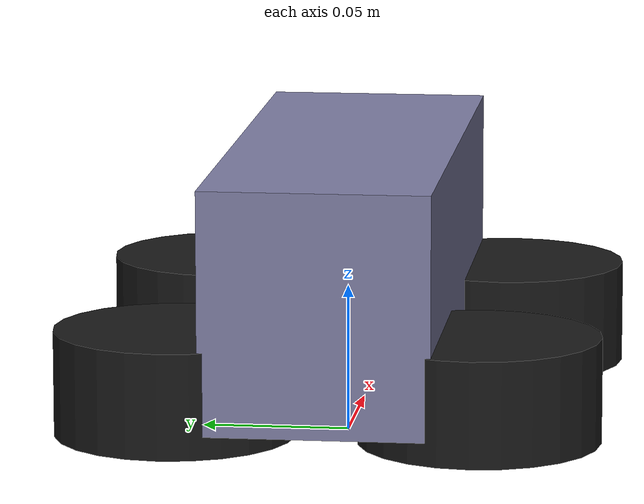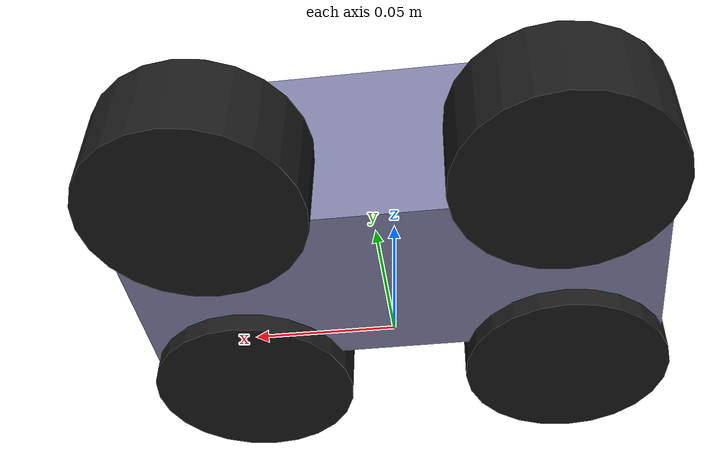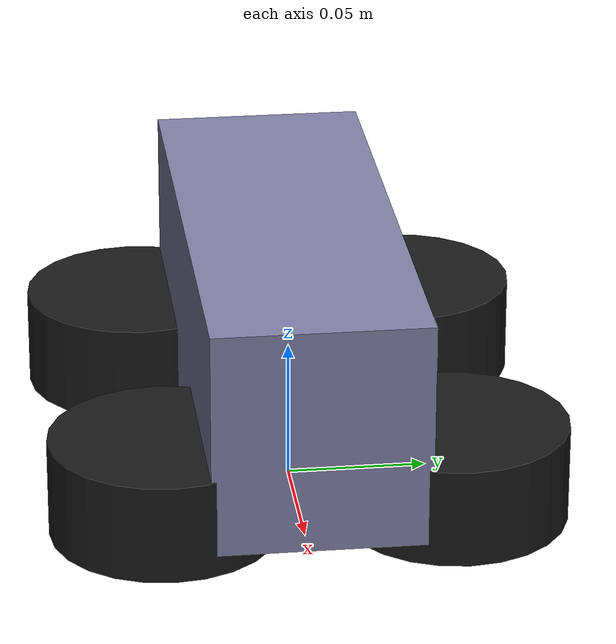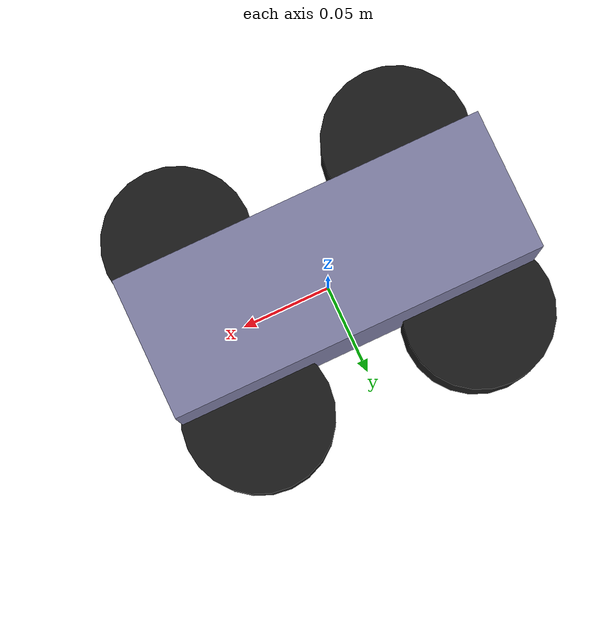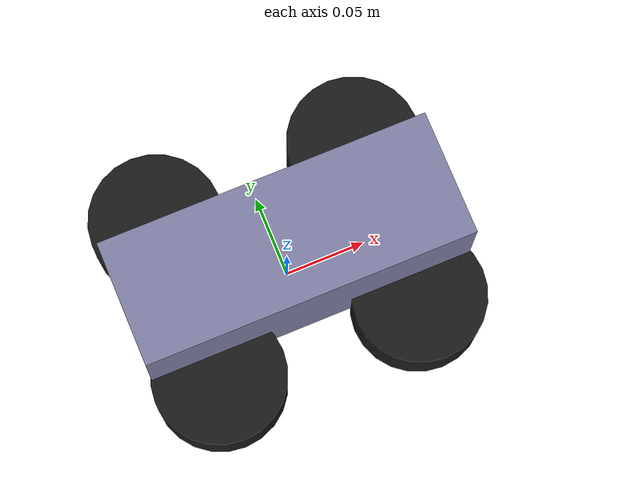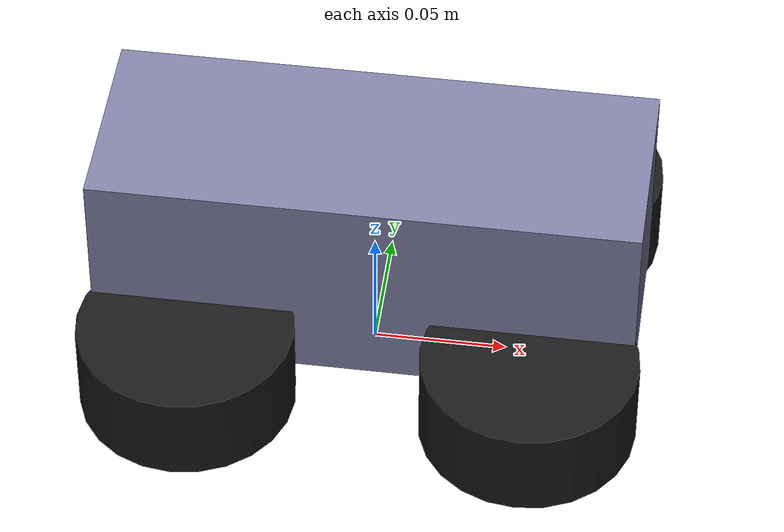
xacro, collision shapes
<?xml version="1.0"?>
<robot name="jsc_mecanum_bot" xmlns:xacro="http://ros.org/wiki/xacro">

  <!--*************** MATERIALES ****************-->
  <material name="darkgrey">
    <color rgba="0.1 0.1 0.1 1.0" />
  </material>
  <material name="grey_blue">
    <color rgba="0.5 0.5 0.65 1.0" />
  </material>
  <material name="blue">
    <color rgba="0.0 0.0 0.8 1.0" />
  </material>
  <material name="black">
    <color rgba="0.0 0.0 0.0 1.0"/>
  </material>

  <!--*************** PROPIEDADES ****************-->
  <xacro:property name="M_PI" value="3.1415926535897931" />
  <xacro:property name="base_size_x" value="0.20" />
  <xacro:property name="base_size_y" value="0.075" />
  <xacro:property name="base_size_z" value="0.08" />
  <xacro:property name="base_mass" value="2.00" />

  <xacro:property name="wheel_radius" value="0.04" />
  <xacro:property name="wheel_width" value="0.035" />
  <xacro:property name="wheel_offset_x" value="0.063"/>
  <xacro:property name="wheel_offset_y" value="0.05"/>
  <xacro:property name="wheel_offset_z" value="0.01"/>
  <xacro:property name="wheel_mass" value="0.5"/>

  <!--*************** MACROS DE INERCIA ****************-->
  <xacro:macro name="box_inertia" params="m x y z">
    <inertia ixx="${m*(y*y+z*z)/12}" ixy="0" ixz="0"
             iyy="${m*(x*x+z*z)/12}" iyz="0"
             izz="${m*(x*x+y*y)/12}"/>
  </xacro:macro>
  <xacro:macro name="cylinder_inertia" params="m r w">
    <inertia ixx="${m*(3*r*r+w*w)/12}" ixy="0" ixz="0"
             iyy="${m*(3*r*r+w*w)/12}" iyz="0"
             izz="${m*r*r/2}"/>
  </xacro:macro>

  <!--*************** BASE FOOTPRINT ****************-->
  <link name="base_footprint" />

  <joint name="base_joint" type="fixed">
    <parent link="base_footprint" />
    <child link="base_link" />
    <origin xyz="0 0 0.02" rpy="0 0 0" />
  </joint>

  <link name="base_link">
    <visual>
      <origin xyz="0 0 0.04" rpy="0 0 0" />
      <geometry>
        <box size="${base_size_x} ${base_size_y} ${base_size_z}" />
      </geometry>
      <material name="grey_blue" />
    </visual>
    <collision>
      <origin xyz="0 0 0.04" rpy="0 0 0" />
      <geometry>
        <box size="${base_size_x} ${base_size_y} ${base_size_z}" />
      </geometry>
    </collision>
    <inertial>
      <origin xyz="0 0 0" rpy="0 0 0"/>
      <mass value="${base_mass}"/>
      <xacro:box_inertia m="${base_mass}" x="${base_size_x}" y="${base_size_y}" z="${base_size_z}"/>
    </inertial>
  </link>

  <!--*************** RUEDAS (4) ****************-->
  <xacro:macro name="wheel" params="name x y rpy_axis">
    <joint name="${name}_joint" type="continuous">
      <parent link="base_link"/>
      <child link="${name}_link"/>
      <origin xyz="${x} ${y} ${wheel_offset_z}" rpy="0 0 ${rpy_axis}"/>
      <axis xyz="1 0 0"/>
    </joint>
    <link name="${name}_link">
      <visual>
        <origin xyz="0 0 0" rpy="0 0 0"/>
        <geometry>
          <mesh filename="package://my_robot_description/meshes/${name}_link.STL" scale="0.6 0.6 0.6"/>
        </geometry>
        <material name="darkgrey"/>
      </visual>
      <collision>
        <origin xyz="0 0 0" rpy="0 0 0"/>
        <geometry>
          <cylinder radius="${wheel_radius}" length="${wheel_width}"/>
        </geometry>
      </collision>
      <inertial>
        <origin xyz="0 0 0" rpy="0 0 0"/>
        <mass value="${wheel_mass}"/>
        <xacro:cylinder_inertia m="${wheel_mass}" r="${wheel_radius}" w="${wheel_width}"/>
      </inertial>
    </link>
  </xacro:macro>

  <!-- Aplicamos las ruedas con la macro -->
  <xacro:wheel name="fl_wheel" x="${wheel_offset_x}" y="${wheel_offset_y}" rpy_axis="${M_PI/2}"/>
  <xacro:wheel name="fr_wheel" x="${wheel_offset_x}" y="${-wheel_offset_y}" rpy_axis="${-M_PI/2}"/>
  <xacro:wheel name="rl_wheel" x="${-wheel_offset_x}" y="${wheel_offset_y}" rpy_axis="${M_PI/2}"/>
  <xacro:wheel name="rr_wheel" x="${-wheel_offset_x}" y="${-wheel_offset_y}" rpy_axis="${-M_PI/2}"/>

</robot>
